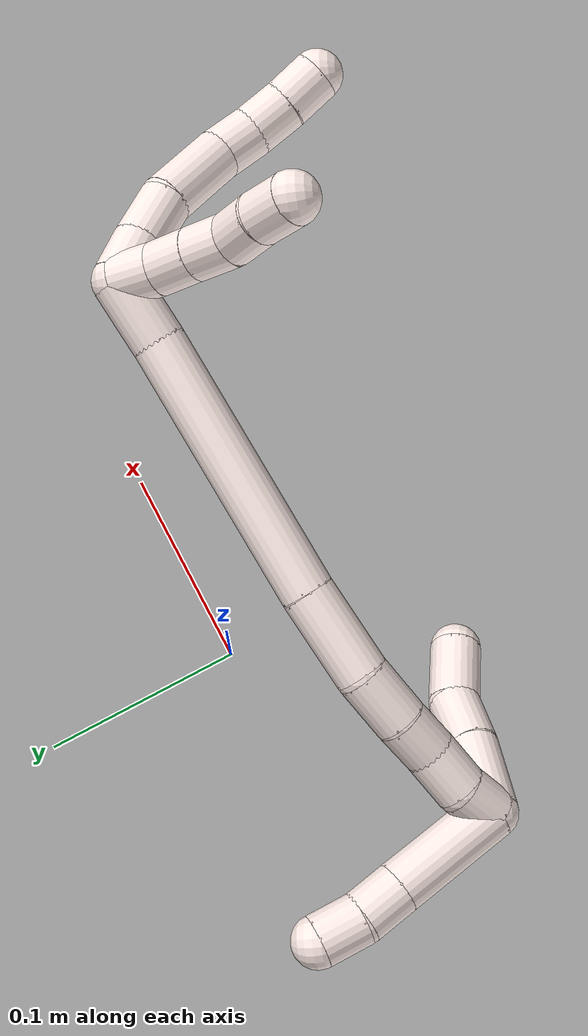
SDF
<sdf version="1.7">
 <world name="default">
  <model name="11">
   <static>0</static>
   <link name="11">
    <collision name="collision-cylinder-e_1_2_8">
     <pose>0.010193 -0.00299 0.003973 0.645212 1.11692 0.411806</pose>
     <geometry><cylinder><radius>0.0125</radius><length>0.022682</length></cylinder></geometry>
     <surface>
      <friction><ode><mu>1.16</mu><mu2>1.16</mu2><slip1>0</slip1><slip2>0</slip2></ode></friction>
      <contact><ode><kp>1e+06</kp><kd>1</kd><max_vel>0</max_vel><min_depth>0.001</min_depth></ode></contact>
     </surface>
    </collision>
    <visual name="visual-cylinder-e_1_2_8">
     <pose>0.010193 -0.00299 0.003973 0.645212 1.11692 0.411806</pose>
     <geometry><cylinder><radius>0.0125</radius><length>0.022682</length></cylinder></geometry>
     <material><ambient>1 0.933333 0.909804 1</ambient></material>
    </visual>
    <collision name="collision-cylinder-e_2_8_9">
     <pose>0.031873 -0.009024 0.013562 0.496544 1.06329 0.296004</pose>
     <geometry><cylinder><radius>0.0125</radius><length>0.026287</length></cylinder></geometry>
     <surface>
      <friction><ode><mu>1.16</mu><mu2>1.16</mu2><slip1>0</slip1><slip2>0</slip2></ode></friction>
      <contact><ode><kp>1e+06</kp><kd>1</kd><max_vel>0</max_vel><min_depth>0.001</min_depth></ode></contact>
     </surface>
    </collision>
    <visual name="visual-cylinder-e_2_8_9">
     <pose>0.031873 -0.009024 0.013562 0.496544 1.06329 0.296004</pose>
     <geometry><cylinder><radius>0.0125</radius><length>0.026287</length></cylinder></geometry>
     <material><ambient>1 0.933333 0.909804 1</ambient></material>
    </visual>
    <collision name="collision-cylinder-e_3_9_10">
     <pose>0.057785 -0.020125 0.030044 0.638112 0.817507 0.284246</pose>
     <geometry><cylinder><radius>0.0125</radius><length>0.039552</length></cylinder></geometry>
     <surface>
      <friction><ode><mu>1.16</mu><mu2>1.16</mu2><slip1>0</slip1><slip2>0</slip2></ode></friction>
      <contact><ode><kp>1e+06</kp><kd>1</kd><max_vel>0</max_vel><min_depth>0.001</min_depth></ode></contact>
     </surface>
    </collision>
    <visual name="visual-cylinder-e_3_9_10">
     <pose>0.057785 -0.020125 0.030044 0.638112 0.817507 0.284246</pose>
     <geometry><cylinder><radius>0.0125</radius><length>0.039552</length></cylinder></geometry>
     <material><ambient>1 0.933333 0.909804 1</ambient></material>
    </visual>
    <collision name="collision-cylinder-e_4_10_11">
     <pose>0.078422 -0.030679 0.048637 0.312391 0.65303 0.106555</pose>
     <geometry><cylinder><radius>0.0125</radius><length>0.020446</length></cylinder></geometry>
     <surface>
      <friction><ode><mu>1.16</mu><mu2>1.16</mu2><slip1>0</slip1><slip2>0</slip2></ode></friction>
      <contact><ode><kp>1e+06</kp><kd>1</kd><max_vel>0</max_vel><min_depth>0.001</min_depth></ode></contact>
     </surface>
    </collision>
    <visual name="visual-cylinder-e_4_10_11">
     <pose>0.078422 -0.030679 0.048637 0.312391 0.65303 0.106555</pose>
     <geometry><cylinder><radius>0.0125</radius><length>0.020446</length></cylinder></geometry>
     <material><ambient>1 0.933333 0.909804 1</ambient></material>
    </visual>
    <collision name="collision-cylinder-e_5_11_12">
     <pose>0.090489 -0.033403 0.064738 0.027272 0.609996 0.008586</pose>
     <geometry><cylinder><radius>0.0125</radius><length>0.020443</length></cylinder></geometry>
     <surface>
      <friction><ode><mu>1.16</mu><mu2>1.16</mu2><slip1>0</slip1><slip2>0</slip2></ode></friction>
      <contact><ode><kp>1e+06</kp><kd>1</kd><max_vel>0</max_vel><min_depth>0.001</min_depth></ode></contact>
     </surface>
    </collision>
    <visual name="visual-cylinder-e_5_11_12">
     <pose>0.090489 -0.033403 0.064738 0.027272 0.609996 0.008586</pose>
     <geometry><cylinder><radius>0.0125</radius><length>0.020443</length></cylinder></geometry>
     <material><ambient>1 0.933333 0.909804 1</ambient></material>
    </visual>
    <collision name="collision-cylinder-e_6_12_6">
     <pose>0.102754 -0.033523 0.081168 -0.013399 0.672036 -0.00468</pose>
     <geometry><cylinder><radius>0.0125</radius><length>0.020589</length></cylinder></geometry>
     <surface>
      <friction><ode><mu>1.16</mu><mu2>1.16</mu2><slip1>0</slip1><slip2>0</slip2></ode></friction>
      <contact><ode><kp>1e+06</kp><kd>1</kd><max_vel>0</max_vel><min_depth>0.001</min_depth></ode></contact>
     </surface>
    </collision>
    <visual name="visual-cylinder-e_6_12_6">
     <pose>0.102754 -0.033523 0.081168 -0.013399 0.672036 -0.00468</pose>
     <geometry><cylinder><radius>0.0125</radius><length>0.020589</length></cylinder></geometry>
     <material><ambient>1 0.933333 0.909804 1</ambient></material>
    </visual>
    <collision name="collision-cylinder-e_1_2_13">
     <pose>0.00037 0.002087 0.009773 -0.210428 0.037031 -0.003911</pose>
     <geometry><cylinder><radius>0.0125</radius><length>0.02</length></cylinder></geometry>
     <surface>
      <friction><ode><mu>1.16</mu><mu2>1.16</mu2><slip1>0</slip1><slip2>0</slip2></ode></friction>
      <contact><ode><kp>1e+06</kp><kd>1</kd><max_vel>0</max_vel><min_depth>0.001</min_depth></ode></contact>
     </surface>
    </collision>
    <visual name="visual-cylinder-e_1_2_13">
     <pose>0.00037 0.002087 0.009773 -0.210428 0.037031 -0.003911</pose>
     <geometry><cylinder><radius>0.0125</radius><length>0.02</length></cylinder></geometry>
     <material><ambient>1 0.933333 0.909804 1</ambient></material>
    </visual>
    <collision name="collision-cylinder-e_2_13_14">
     <pose>0.001181 0.007514 0.028961 -0.340815 0.044084 -0.007587</pose>
     <geometry><cylinder><radius>0.0125</radius><length>0.02</length></cylinder></geometry>
     <surface>
      <friction><ode><mu>1.16</mu><mu2>1.16</mu2><slip1>0</slip1><slip2>0</slip2></ode></friction>
      <contact><ode><kp>1e+06</kp><kd>1</kd><max_vel>0</max_vel><min_depth>0.001</min_depth></ode></contact>
     </surface>
    </collision>
    <visual name="visual-cylinder-e_2_13_14">
     <pose>0.001181 0.007514 0.028961 -0.340815 0.044084 -0.007587</pose>
     <geometry><cylinder><radius>0.0125</radius><length>0.02</length></cylinder></geometry>
     <material><ambient>1 0.933333 0.909804 1</ambient></material>
    </visual>
    <collision name="collision-cylinder-e_3_14_15">
     <pose>0.001983 0.0141 0.047828 -0.330897 0.03616 -0.006038</pose>
     <geometry><cylinder><radius>0.0125</radius><length>0.02</length></cylinder></geometry>
     <surface>
      <friction><ode><mu>1.16</mu><mu2>1.16</mu2><slip1>0</slip1><slip2>0</slip2></ode></friction>
      <contact><ode><kp>1e+06</kp><kd>1</kd><max_vel>0</max_vel><min_depth>0.001</min_depth></ode></contact>
     </surface>
    </collision>
    <visual name="visual-cylinder-e_3_14_15">
     <pose>0.001983 0.0141 0.047828 -0.330897 0.03616 -0.006038</pose>
     <geometry><cylinder><radius>0.0125</radius><length>0.02</length></cylinder></geometry>
     <material><ambient>1 0.933333 0.909804 1</ambient></material>
    </visual>
    <collision name="collision-cylinder-e_4_15_16">
     <pose>0.002866 0.023572 0.065088 -0.67303 0.052158 -0.018249</pose>
     <geometry><cylinder><radius>0.0125</radius><length>0.02</length></cylinder></geometry>
     <surface>
      <friction><ode><mu>1.16</mu><mu2>1.16</mu2><slip1>0</slip1><slip2>0</slip2></ode></friction>
      <contact><ode><kp>1e+06</kp><kd>1</kd><max_vel>0</max_vel><min_depth>0.001</min_depth></ode></contact>
     </surface>
    </collision>
    <visual name="visual-cylinder-e_4_15_16">
     <pose>0.002866 0.023572 0.065088 -0.67303 0.052158 -0.018249</pose>
     <geometry><cylinder><radius>0.0125</radius><length>0.02</length></cylinder></geometry>
     <material><ambient>1 0.933333 0.909804 1</ambient></material>
    </visual>
    <collision name="collision-cylinder-e_5_16_5">
     <pose>0.003793 0.035114 0.081356 -0.56116 0.040533 -0.011682</pose>
     <geometry><cylinder><radius>0.0125</radius><length>0.02</length></cylinder></geometry>
     <surface>
      <friction><ode><mu>1.16</mu><mu2>1.16</mu2><slip1>0</slip1><slip2>0</slip2></ode></friction>
      <contact><ode><kp>1e+06</kp><kd>1</kd><max_vel>0</max_vel><min_depth>0.001</min_depth></ode></contact>
     </surface>
    </collision>
    <visual name="visual-cylinder-e_5_16_5">
     <pose>0.003793 0.035114 0.081356 -0.56116 0.040533 -0.011682</pose>
     <geometry><cylinder><radius>0.0125</radius><length>0.02</length></cylinder></geometry>
     <material><ambient>1 0.933333 0.909804 1</ambient></material>
    </visual>
    <collision name="collision-cylinder-e_1_2_17">
     <pose>-0.012907 -0.007689 0.006617 0.860154 -0.904678 -0.438646</pose>
     <geometry><cylinder><radius>0.0125</radius><length>0.032832</length></cylinder></geometry>
     <surface>
      <friction><ode><mu>1.16</mu><mu2>1.16</mu2><slip1>0</slip1><slip2>0</slip2></ode></friction>
      <contact><ode><kp>1e+06</kp><kd>1</kd><max_vel>0</max_vel><min_depth>0.001</min_depth></ode></contact>
     </surface>
    </collision>
    <visual name="visual-cylinder-e_1_2_17">
     <pose>-0.012907 -0.007689 0.006617 0.860154 -0.904678 -0.438646</pose>
     <geometry><cylinder><radius>0.0125</radius><length>0.032832</length></cylinder></geometry>
     <material><ambient>1 0.933333 0.909804 1</ambient></material>
    </visual>
    <collision name="collision-cylinder-e_2_17_18">
     <pose>-0.080491 -0.039888 0.038981 0.760809 -0.994326 -0.427347</pose>
     <geometry><cylinder><radius>0.0125</radius><length>0.130434</length></cylinder></geometry>
     <surface>
      <friction><ode><mu>1.16</mu><mu2>1.16</mu2><slip1>0</slip1><slip2>0</slip2></ode></friction>
      <contact><ode><kp>1e+06</kp><kd>1</kd><max_vel>0</max_vel><min_depth>0.001</min_depth></ode></contact>
     </surface>
    </collision>
    <visual name="visual-cylinder-e_2_17_18">
     <pose>-0.080491 -0.039888 0.038981 0.760809 -0.994326 -0.427347</pose>
     <geometry><cylinder><radius>0.0125</radius><length>0.130434</length></cylinder></geometry>
     <material><ambient>1 0.933333 0.909804 1</ambient></material>
    </visual>
    <collision name="collision-cylinder-e_3_18_19">
     <pose>-0.152891 -0.073124 0.074295 0.739389 -0.939814 -0.388629</pose>
     <geometry><cylinder><radius>0.0125</radius><length>0.043898</length></cylinder></geometry>
     <surface>
      <friction><ode><mu>1.16</mu><mu2>1.16</mu2><slip1>0</slip1><slip2>0</slip2></ode></friction>
      <contact><ode><kp>1e+06</kp><kd>1</kd><max_vel>0</max_vel><min_depth>0.001</min_depth></ode></contact>
     </surface>
    </collision>
    <visual name="visual-cylinder-e_3_18_19">
     <pose>-0.152891 -0.073124 0.074295 0.739389 -0.939814 -0.388629</pose>
     <geometry><cylinder><radius>0.0125</radius><length>0.043898</length></cylinder></geometry>
     <material><ambient>1 0.933333 0.909804 1</ambient></material>
    </visual>
    <collision name="collision-cylinder-e_4_19_20">
     <pose>-0.179992 -0.089647 0.090495 0.866035 -0.741613 -0.355663</pose>
     <geometry><cylinder><radius>0.0125</radius><length>0.027767</length></cylinder></geometry>
     <surface>
      <friction><ode><mu>1.16</mu><mu2>1.16</mu2><slip1>0</slip1><slip2>0</slip2></ode></friction>
      <contact><ode><kp>1e+06</kp><kd>1</kd><max_vel>0</max_vel><min_depth>0.001</min_depth></ode></contact>
     </surface>
    </collision>
    <visual name="visual-cylinder-e_4_19_20">
     <pose>-0.179992 -0.089647 0.090495 0.866035 -0.741613 -0.355663</pose>
     <geometry><cylinder><radius>0.0125</radius><length>0.027767</length></cylinder></geometry>
     <material><ambient>1 0.933333 0.909804 1</ambient></material>
    </visual>
    <collision name="collision-cylinder-e_5_20_21">
     <pose>-0.19563 -0.104368 0.102083 0.949478 -0.634057 -0.3341</pose>
     <geometry><cylinder><radius>0.0125</radius><length>0.021134</length></cylinder></geometry>
     <surface>
      <friction><ode><mu>1.16</mu><mu2>1.16</mu2><slip1>0</slip1><slip2>0</slip2></ode></friction>
      <contact><ode><kp>1e+06</kp><kd>1</kd><max_vel>0</max_vel><min_depth>0.001</min_depth></ode></contact>
     </surface>
    </collision>
    <visual name="visual-cylinder-e_5_20_21">
     <pose>-0.19563 -0.104368 0.102083 0.949478 -0.634057 -0.3341</pose>
     <geometry><cylinder><radius>0.0125</radius><length>0.021134</length></cylinder></geometry>
     <material><ambient>1 0.933333 0.909804 1</ambient></material>
    </visual>
    <collision name="collision-cylinder-e_6_21_22">
     <pose>-0.209804 -0.1176 0.112662 0.842809 -0.752535 -0.350571</pose>
     <geometry><cylinder><radius>0.0125</radius><length>0.023156</length></cylinder></geometry>
     <surface>
      <friction><ode><mu>1.16</mu><mu2>1.16</mu2><slip1>0</slip1><slip2>0</slip2></ode></friction>
      <contact><ode><kp>1e+06</kp><kd>1</kd><max_vel>0</max_vel><min_depth>0.001</min_depth></ode></contact>
     </surface>
    </collision>
    <visual name="visual-cylinder-e_6_21_22">
     <pose>-0.209804 -0.1176 0.112662 0.842809 -0.752535 -0.350571</pose>
     <geometry><cylinder><radius>0.0125</radius><length>0.023156</length></cylinder></geometry>
     <material><ambient>1 0.933333 0.909804 1</ambient></material>
    </visual>
    <collision name="collision-cylinder-e_7_22_1">
     <pose>-0.222608 -0.131024 0.124064 0.888675 -0.49012 -0.237011</pose>
     <geometry><cylinder><radius>0.0125</radius><length>0.020778</length></cylinder></geometry>
     <surface>
      <friction><ode><mu>1.16</mu><mu2>1.16</mu2><slip1>0</slip1><slip2>0</slip2></ode></friction>
      <contact><ode><kp>1e+06</kp><kd>1</kd><max_vel>0</max_vel><min_depth>0.001</min_depth></ode></contact>
     </surface>
    </collision>
    <visual name="visual-cylinder-e_7_22_1">
     <pose>-0.222608 -0.131024 0.124064 0.888675 -0.49012 -0.237011</pose>
     <geometry><cylinder><radius>0.0125</radius><length>0.020778</length></cylinder></geometry>
     <material><ambient>1 0.933333 0.909804 1</ambient></material>
    </visual>
    <collision name="collision-cylinder-e_1_1_23">
     <pose>-0.243827 -0.131004 0.108078 -2.8248 -0.619355 2.21555</pose>
     <geometry><cylinder><radius>0.0125</radius><length>0.056256</length></cylinder></geometry>
     <surface>
      <friction><ode><mu>1.16</mu><mu2>1.16</mu2><slip1>0</slip1><slip2>0</slip2></ode></friction>
      <contact><ode><kp>1e+06</kp><kd>1</kd><max_vel>0</max_vel><min_depth>0.001</min_depth></ode></contact>
     </surface>
    </collision>
    <visual name="visual-cylinder-e_1_1_23">
     <pose>-0.243827 -0.131004 0.108078 -2.8248 -0.619355 2.21555</pose>
     <geometry><cylinder><radius>0.0125</radius><length>0.056256</length></cylinder></geometry>
     <material><ambient>1 0.933333 0.909804 1</ambient></material>
    </visual>
    <collision name="collision-cylinder-e_2_23_24">
     <pose>-0.266538 -0.12099 0.077988 -2.80876 -0.626929 2.18541</pose>
     <geometry><cylinder><radius>0.0125</radius><length>0.021757</length></cylinder></geometry>
     <surface>
      <friction><ode><mu>1.16</mu><mu2>1.16</mu2><slip1>0</slip1><slip2>0</slip2></ode></friction>
      <contact><ode><kp>1e+06</kp><kd>1</kd><max_vel>0</max_vel><min_depth>0.001</min_depth></ode></contact>
     </surface>
    </collision>
    <visual name="visual-cylinder-e_2_23_24">
     <pose>-0.266538 -0.12099 0.077988 -2.80876 -0.626929 2.18541</pose>
     <geometry><cylinder><radius>0.0125</radius><length>0.021757</length></cylinder></geometry>
     <material><ambient>1 0.933333 0.909804 1</ambient></material>
    </visual>
    <collision name="collision-cylinder-e_3_24_4">
     <pose>-0.277607 -0.115382 0.0601 -2.86348 -0.440507 2.02419</pose>
     <geometry><cylinder><radius>0.0125</radius><length>0.021987</length></cylinder></geometry>
     <surface>
      <friction><ode><mu>1.16</mu><mu2>1.16</mu2><slip1>0</slip1><slip2>0</slip2></ode></friction>
      <contact><ode><kp>1e+06</kp><kd>1</kd><max_vel>0</max_vel><min_depth>0.001</min_depth></ode></contact>
     </surface>
    </collision>
    <visual name="visual-cylinder-e_3_24_4">
     <pose>-0.277607 -0.115382 0.0601 -2.86348 -0.440507 2.02419</pose>
     <geometry><cylinder><radius>0.0125</radius><length>0.021987</length></cylinder></geometry>
     <material><ambient>1 0.933333 0.909804 1</ambient></material>
    </visual>
    <collision name="collision-cylinder-e_1_1_25">
     <pose>-0.210417 -0.145788 0.125716 2.06546 1.10009 1.59785</pose>
     <geometry><cylinder><radius>0.0125</radius><length>0.03833</length></cylinder></geometry>
     <surface>
      <friction><ode><mu>1.16</mu><mu2>1.16</mu2><slip1>0</slip1><slip2>0</slip2></ode></friction>
      <contact><ode><kp>1e+06</kp><kd>1</kd><max_vel>0</max_vel><min_depth>0.001</min_depth></ode></contact>
     </surface>
    </collision>
    <visual name="visual-cylinder-e_1_1_25">
     <pose>-0.210417 -0.145788 0.125716 2.06546 1.10009 1.59785</pose>
     <geometry><cylinder><radius>0.0125</radius><length>0.03833</length></cylinder></geometry>
     <material><ambient>1 0.933333 0.909804 1</ambient></material>
    </visual>
    <collision name="collision-cylinder-e_2_25_26">
     <pose>-0.181088 -0.159491 0.117264 2.19132 1.02494 1.66017</pose>
     <geometry><cylinder><radius>0.0125</radius><length>0.028663</length></cylinder></geometry>
     <surface>
      <friction><ode><mu>1.16</mu><mu2>1.16</mu2><slip1>0</slip1><slip2>0</slip2></ode></friction>
      <contact><ode><kp>1e+06</kp><kd>1</kd><max_vel>0</max_vel><min_depth>0.001</min_depth></ode></contact>
     </surface>
    </collision>
    <visual name="visual-cylinder-e_2_25_26">
     <pose>-0.181088 -0.159491 0.117264 2.19132 1.02494 1.66017</pose>
     <geometry><cylinder><radius>0.0125</radius><length>0.028663</length></cylinder></geometry>
     <material><ambient>1 0.933333 0.909804 1</ambient></material>
    </visual>
    <collision name="collision-cylinder-e_3_26_3">
     <pose>-0.153704 -0.172103 0.113461 1.4911 1.16068 1.08873</pose>
     <geometry><cylinder><radius>0.0125</radius><length>0.033007</length></cylinder></geometry>
     <surface>
      <friction><ode><mu>1.16</mu><mu2>1.16</mu2><slip1>0</slip1><slip2>0</slip2></ode></friction>
      <contact><ode><kp>1e+06</kp><kd>1</kd><max_vel>0</max_vel><min_depth>0.001</min_depth></ode></contact>
     </surface>
    </collision>
    <visual name="visual-cylinder-e_3_26_3">
     <pose>-0.153704 -0.172103 0.113461 1.4911 1.16068 1.08873</pose>
     <geometry><cylinder><radius>0.0125</radius><length>0.033007</length></cylinder></geometry>
     <material><ambient>1 0.933333 0.909804 1</ambient></material>
    </visual>
    <collision name="collision-sphere-3">
     <pose>-0.138569 -0.178663 0.113985 0 -0 0</pose>
     <geometry><sphere><radius>0.0125</radius></sphere></geometry>
     <surface>
      <friction><ode><mu>1.16</mu><mu2>1.16</mu2><slip1>0</slip1><slip2>0</slip2></ode></friction>
      <contact><ode><kp>1e+06</kp><kd>1</kd><max_vel>0</max_vel><min_depth>0.001</min_depth></ode></contact>
     </surface>
    </collision>
    <visual name="visual-sphere-3">
     <pose>-0.138569 -0.178663 0.113985 0 -0 0</pose>
     <geometry><sphere><radius>0.0125</radius></sphere></geometry>
     <material><ambient>1 0.933333 0.909804 1</ambient></material>
    </visual>
    <collision name="collision-sphere-26">
     <pose>-0.168839 -0.165544 0.112938 0 -0 0</pose>
     <geometry><sphere><radius>0.0125</radius></sphere></geometry>
     <surface>
      <friction><ode><mu>1.16</mu><mu2>1.16</mu2><slip1>0</slip1><slip2>0</slip2></ode></friction>
      <contact><ode><kp>1e+06</kp><kd>1</kd><max_vel>0</max_vel><min_depth>0.001</min_depth></ode></contact>
     </surface>
    </collision>
    <visual name="visual-sphere-26">
     <pose>-0.168839 -0.165544 0.112938 0 -0 0</pose>
     <geometry><sphere><radius>0.0125</radius></sphere></geometry>
     <material><ambient>1 0.933333 0.909804 1</ambient></material>
    </visual>
    <collision name="collision-sphere-25">
     <pose>-0.193337 -0.153438 0.12159 0 -0 0</pose>
     <geometry><sphere><radius>0.0125</radius></sphere></geometry>
     <surface>
      <friction><ode><mu>1.16</mu><mu2>1.16</mu2><slip1>0</slip1><slip2>0</slip2></ode></friction>
      <contact><ode><kp>1e+06</kp><kd>1</kd><max_vel>0</max_vel><min_depth>0.001</min_depth></ode></contact>
     </surface>
    </collision>
    <visual name="visual-sphere-25">
     <pose>-0.193337 -0.153438 0.12159 0 -0 0</pose>
     <geometry><sphere><radius>0.0125</radius></sphere></geometry>
     <material><ambient>1 0.933333 0.909804 1</ambient></material>
    </visual>
    <collision name="collision-sphere-4">
     <pose>-0.282295 -0.112652 0.050539 0 -0 0</pose>
     <geometry><sphere><radius>0.0125</radius></sphere></geometry>
     <surface>
      <friction><ode><mu>1.16</mu><mu2>1.16</mu2><slip1>0</slip1><slip2>0</slip2></ode></friction>
      <contact><ode><kp>1e+06</kp><kd>1</kd><max_vel>0</max_vel><min_depth>0.001</min_depth></ode></contact>
     </surface>
    </collision>
    <visual name="visual-sphere-4">
     <pose>-0.282295 -0.112652 0.050539 0 -0 0</pose>
     <geometry><sphere><radius>0.0125</radius></sphere></geometry>
     <material><ambient>1 0.933333 0.909804 1</ambient></material>
    </visual>
    <collision name="collision-sphere-24">
     <pose>-0.27292 -0.118112 0.069662 0 -0 0</pose>
     <geometry><sphere><radius>0.0125</radius></sphere></geometry>
     <surface>
      <friction><ode><mu>1.16</mu><mu2>1.16</mu2><slip1>0</slip1><slip2>0</slip2></ode></friction>
      <contact><ode><kp>1e+06</kp><kd>1</kd><max_vel>0</max_vel><min_depth>0.001</min_depth></ode></contact>
     </surface>
    </collision>
    <visual name="visual-sphere-24">
     <pose>-0.27292 -0.118112 0.069662 0 -0 0</pose>
     <geometry><sphere><radius>0.0125</radius></sphere></geometry>
     <material><ambient>1 0.933333 0.909804 1</ambient></material>
    </visual>
    <collision name="collision-sphere-23">
     <pose>-0.260156 -0.123869 0.086315 0 -0 0</pose>
     <geometry><sphere><radius>0.0125</radius></sphere></geometry>
     <surface>
      <friction><ode><mu>1.16</mu><mu2>1.16</mu2><slip1>0</slip1><slip2>0</slip2></ode></friction>
      <contact><ode><kp>1e+06</kp><kd>1</kd><max_vel>0</max_vel><min_depth>0.001</min_depth></ode></contact>
     </surface>
    </collision>
    <visual name="visual-sphere-23">
     <pose>-0.260156 -0.123869 0.086315 0 -0 0</pose>
     <geometry><sphere><radius>0.0125</radius></sphere></geometry>
     <material><ambient>1 0.933333 0.909804 1</ambient></material>
    </visual>
    <collision name="collision-sphere-1">
     <pose>-0.227498 -0.138139 0.129842 0 -0 0</pose>
     <geometry><sphere><radius>0.0125</radius></sphere></geometry>
     <surface>
      <friction><ode><mu>1.16</mu><mu2>1.16</mu2><slip1>0</slip1><slip2>0</slip2></ode></friction>
      <contact><ode><kp>1e+06</kp><kd>1</kd><max_vel>0</max_vel><min_depth>0.001</min_depth></ode></contact>
     </surface>
    </collision>
    <visual name="visual-sphere-1">
     <pose>-0.227498 -0.138139 0.129842 0 -0 0</pose>
     <geometry><sphere><radius>0.0125</radius></sphere></geometry>
     <material><ambient>1 0.933333 0.909804 1</ambient></material>
    </visual>
    <collision name="collision-sphere-22">
     <pose>-0.217717 -0.123909 0.118285 0 -0 0</pose>
     <geometry><sphere><radius>0.0125</radius></sphere></geometry>
     <surface>
      <friction><ode><mu>1.16</mu><mu2>1.16</mu2><slip1>0</slip1><slip2>0</slip2></ode></friction>
      <contact><ode><kp>1e+06</kp><kd>1</kd><max_vel>0</max_vel><min_depth>0.001</min_depth></ode></contact>
     </surface>
    </collision>
    <visual name="visual-sphere-22">
     <pose>-0.217717 -0.123909 0.118285 0 -0 0</pose>
     <geometry><sphere><radius>0.0125</radius></sphere></geometry>
     <material><ambient>1 0.933333 0.909804 1</ambient></material>
    </visual>
    <collision name="collision-sphere-21">
     <pose>-0.20189 -0.11129 0.107038 0 -0 0</pose>
     <geometry><sphere><radius>0.0125</radius></sphere></geometry>
     <surface>
      <friction><ode><mu>1.16</mu><mu2>1.16</mu2><slip1>0</slip1><slip2>0</slip2></ode></friction>
      <contact><ode><kp>1e+06</kp><kd>1</kd><max_vel>0</max_vel><min_depth>0.001</min_depth></ode></contact>
     </surface>
    </collision>
    <visual name="visual-sphere-21">
     <pose>-0.20189 -0.11129 0.107038 0 -0 0</pose>
     <geometry><sphere><radius>0.0125</radius></sphere></geometry>
     <material><ambient>1 0.933333 0.909804 1</ambient></material>
    </visual>
    <collision name="collision-sphere-12">
     <pose>0.096345 -0.033631 0.073113 0 -0 0</pose>
     <geometry><sphere><radius>0.0125</radius></sphere></geometry>
     <surface>
      <friction><ode><mu>1.16</mu><mu2>1.16</mu2><slip1>0</slip1><slip2>0</slip2></ode></friction>
      <contact><ode><kp>1e+06</kp><kd>1</kd><max_vel>0</max_vel><min_depth>0.001</min_depth></ode></contact>
     </surface>
    </collision>
    <visual name="visual-sphere-12">
     <pose>0.096345 -0.033631 0.073113 0 -0 0</pose>
     <geometry><sphere><radius>0.0125</radius></sphere></geometry>
     <material><ambient>1 0.933333 0.909804 1</ambient></material>
    </visual>
    <collision name="collision-sphere-11">
     <pose>0.084634 -0.033174 0.056363 0 -0 0</pose>
     <geometry><sphere><radius>0.0125</radius></sphere></geometry>
     <surface>
      <friction><ode><mu>1.16</mu><mu2>1.16</mu2><slip1>0</slip1><slip2>0</slip2></ode></friction>
      <contact><ode><kp>1e+06</kp><kd>1</kd><max_vel>0</max_vel><min_depth>0.001</min_depth></ode></contact>
     </surface>
    </collision>
    <visual name="visual-sphere-11">
     <pose>0.084634 -0.033174 0.056363 0 -0 0</pose>
     <geometry><sphere><radius>0.0125</radius></sphere></geometry>
     <material><ambient>1 0.933333 0.909804 1</ambient></material>
    </visual>
    <collision name="collision-sphere-10">
     <pose>0.072211 -0.028183 0.04091 0 -0 0</pose>
     <geometry><sphere><radius>0.0125</radius></sphere></geometry>
     <surface>
      <friction><ode><mu>1.16</mu><mu2>1.16</mu2><slip1>0</slip1><slip2>0</slip2></ode></friction>
      <contact><ode><kp>1e+06</kp><kd>1</kd><max_vel>0</max_vel><min_depth>0.001</min_depth></ode></contact>
     </surface>
    </collision>
    <visual name="visual-sphere-10">
     <pose>0.072211 -0.028183 0.04091 0 -0 0</pose>
     <geometry><sphere><radius>0.0125</radius></sphere></geometry>
     <material><ambient>1 0.933333 0.909804 1</ambient></material>
    </visual>
    <collision name="collision-sphere-9">
     <pose>0.04336 -0.012067 0.019178 0 -0 0</pose>
     <geometry><sphere><radius>0.0125</radius></sphere></geometry>
     <surface>
      <friction><ode><mu>1.16</mu><mu2>1.16</mu2><slip1>0</slip1><slip2>0</slip2></ode></friction>
      <contact><ode><kp>1e+06</kp><kd>1</kd><max_vel>0</max_vel><min_depth>0.001</min_depth></ode></contact>
     </surface>
    </collision>
    <visual name="visual-sphere-9">
     <pose>0.04336 -0.012067 0.019178 0 -0 0</pose>
     <geometry><sphere><radius>0.0125</radius></sphere></geometry>
     <material><ambient>1 0.933333 0.909804 1</ambient></material>
    </visual>
    <collision name="collision-sphere-2">
     <geometry><sphere><radius>0.0125</radius></sphere></geometry>
     <surface>
      <friction><ode><mu>1.16</mu><mu2>1.16</mu2><slip1>0</slip1><slip2>0</slip2></ode></friction>
      <contact><ode><kp>1e+06</kp><kd>1</kd><max_vel>0</max_vel><min_depth>0.001</min_depth></ode></contact>
     </surface>
    </collision>
    <visual name="visual-sphere-2">
     <geometry><sphere><radius>0.0125</radius></sphere></geometry>
     <material><ambient>1 0.933333 0.909804 1</ambient></material>
    </visual>
    <collision name="collision-sphere-19">
     <pose>-0.170614 -0.081849 0.083862 0 -0 0</pose>
     <geometry><sphere><radius>0.0125</radius></sphere></geometry>
     <surface>
      <friction><ode><mu>1.16</mu><mu2>1.16</mu2><slip1>0</slip1><slip2>0</slip2></ode></friction>
      <contact><ode><kp>1e+06</kp><kd>1</kd><max_vel>0</max_vel><min_depth>0.001</min_depth></ode></contact>
     </surface>
    </collision>
    <visual name="visual-sphere-19">
     <pose>-0.170614 -0.081849 0.083862 0 -0 0</pose>
     <geometry><sphere><radius>0.0125</radius></sphere></geometry>
     <material><ambient>1 0.933333 0.909804 1</ambient></material>
    </visual>
    <collision name="collision-sphere-8">
     <pose>0.020386 -0.005981 0.007946 0 -0 0</pose>
     <geometry><sphere><radius>0.0125</radius></sphere></geometry>
     <surface>
      <friction><ode><mu>1.16</mu><mu2>1.16</mu2><slip1>0</slip1><slip2>0</slip2></ode></friction>
      <contact><ode><kp>1e+06</kp><kd>1</kd><max_vel>0</max_vel><min_depth>0.001</min_depth></ode></contact>
     </surface>
    </collision>
    <visual name="visual-sphere-8">
     <pose>0.020386 -0.005981 0.007946 0 -0 0</pose>
     <geometry><sphere><radius>0.0125</radius></sphere></geometry>
     <material><ambient>1 0.933333 0.909804 1</ambient></material>
    </visual>
    <collision name="collision-sphere-6">
     <pose>0.109163 -0.033415 0.089224 0 -0 0</pose>
     <geometry><sphere><radius>0.0125</radius></sphere></geometry>
     <surface>
      <friction><ode><mu>1.16</mu><mu2>1.16</mu2><slip1>0</slip1><slip2>0</slip2></ode></friction>
      <contact><ode><kp>1e+06</kp><kd>1</kd><max_vel>0</max_vel><min_depth>0.001</min_depth></ode></contact>
     </surface>
    </collision>
    <visual name="visual-sphere-6">
     <pose>0.109163 -0.033415 0.089224 0 -0 0</pose>
     <geometry><sphere><radius>0.0125</radius></sphere></geometry>
     <material><ambient>1 0.933333 0.909804 1</ambient></material>
    </visual>
    <collision name="collision-sphere-13">
     <pose>0.00074 0.004175 0.019545 0 -0 0</pose>
     <geometry><sphere><radius>0.0125</radius></sphere></geometry>
     <surface>
      <friction><ode><mu>1.16</mu><mu2>1.16</mu2><slip1>0</slip1><slip2>0</slip2></ode></friction>
      <contact><ode><kp>1e+06</kp><kd>1</kd><max_vel>0</max_vel><min_depth>0.001</min_depth></ode></contact>
     </surface>
    </collision>
    <visual name="visual-sphere-13">
     <pose>0.00074 0.004175 0.019545 0 -0 0</pose>
     <geometry><sphere><radius>0.0125</radius></sphere></geometry>
     <material><ambient>1 0.933333 0.909804 1</ambient></material>
    </visual>
    <collision name="collision-sphere-14">
     <pose>0.001622 0.010853 0.038377 0 -0 0</pose>
     <geometry><sphere><radius>0.0125</radius></sphere></geometry>
     <surface>
      <friction><ode><mu>1.16</mu><mu2>1.16</mu2><slip1>0</slip1><slip2>0</slip2></ode></friction>
      <contact><ode><kp>1e+06</kp><kd>1</kd><max_vel>0</max_vel><min_depth>0.001</min_depth></ode></contact>
     </surface>
    </collision>
    <visual name="visual-sphere-14">
     <pose>0.001622 0.010853 0.038377 0 -0 0</pose>
     <geometry><sphere><radius>0.0125</radius></sphere></geometry>
     <material><ambient>1 0.933333 0.909804 1</ambient></material>
    </visual>
    <collision name="collision-sphere-15">
     <pose>0.002345 0.017347 0.057279 0 -0 0</pose>
     <geometry><sphere><radius>0.0125</radius></sphere></geometry>
     <surface>
      <friction><ode><mu>1.16</mu><mu2>1.16</mu2><slip1>0</slip1><slip2>0</slip2></ode></friction>
      <contact><ode><kp>1e+06</kp><kd>1</kd><max_vel>0</max_vel><min_depth>0.001</min_depth></ode></contact>
     </surface>
    </collision>
    <visual name="visual-sphere-15">
     <pose>0.002345 0.017347 0.057279 0 -0 0</pose>
     <geometry><sphere><radius>0.0125</radius></sphere></geometry>
     <material><ambient>1 0.933333 0.909804 1</ambient></material>
    </visual>
    <collision name="collision-sphere-16">
     <pose>0.003388 0.029797 0.072897 0 -0 0</pose>
     <geometry><sphere><radius>0.0125</radius></sphere></geometry>
     <surface>
      <friction><ode><mu>1.16</mu><mu2>1.16</mu2><slip1>0</slip1><slip2>0</slip2></ode></friction>
      <contact><ode><kp>1e+06</kp><kd>1</kd><max_vel>0</max_vel><min_depth>0.001</min_depth></ode></contact>
     </surface>
    </collision>
    <visual name="visual-sphere-16">
     <pose>0.003388 0.029797 0.072897 0 -0 0</pose>
     <geometry><sphere><radius>0.0125</radius></sphere></geometry>
     <material><ambient>1 0.933333 0.909804 1</ambient></material>
    </visual>
    <collision name="collision-sphere-5">
     <pose>0.004198 0.040432 0.089816 0 -0 0</pose>
     <geometry><sphere><radius>0.0125</radius></sphere></geometry>
     <surface>
      <friction><ode><mu>1.16</mu><mu2>1.16</mu2><slip1>0</slip1><slip2>0</slip2></ode></friction>
      <contact><ode><kp>1e+06</kp><kd>1</kd><max_vel>0</max_vel><min_depth>0.001</min_depth></ode></contact>
     </surface>
    </collision>
    <visual name="visual-sphere-5">
     <pose>0.004198 0.040432 0.089816 0 -0 0</pose>
     <geometry><sphere><radius>0.0125</radius></sphere></geometry>
     <material><ambient>1 0.933333 0.909804 1</ambient></material>
    </visual>
    <collision name="collision-sphere-17">
     <pose>-0.025814 -0.015377 0.013235 0 -0 0</pose>
     <geometry><sphere><radius>0.0125</radius></sphere></geometry>
     <surface>
      <friction><ode><mu>1.16</mu><mu2>1.16</mu2><slip1>0</slip1><slip2>0</slip2></ode></friction>
      <contact><ode><kp>1e+06</kp><kd>1</kd><max_vel>0</max_vel><min_depth>0.001</min_depth></ode></contact>
     </surface>
    </collision>
    <visual name="visual-sphere-17">
     <pose>-0.025814 -0.015377 0.013235 0 -0 0</pose>
     <geometry><sphere><radius>0.0125</radius></sphere></geometry>
     <material><ambient>1 0.933333 0.909804 1</ambient></material>
    </visual>
    <collision name="collision-sphere-18">
     <pose>-0.135169 -0.064398 0.064728 0 -0 0</pose>
     <geometry><sphere><radius>0.0125</radius></sphere></geometry>
     <surface>
      <friction><ode><mu>1.16</mu><mu2>1.16</mu2><slip1>0</slip1><slip2>0</slip2></ode></friction>
      <contact><ode><kp>1e+06</kp><kd>1</kd><max_vel>0</max_vel><min_depth>0.001</min_depth></ode></contact>
     </surface>
    </collision>
    <visual name="visual-sphere-18">
     <pose>-0.135169 -0.064398 0.064728 0 -0 0</pose>
     <geometry><sphere><radius>0.0125</radius></sphere></geometry>
     <material><ambient>1 0.933333 0.909804 1</ambient></material>
    </visual>
    <collision name="collision-sphere-20">
     <pose>-0.18937 -0.097446 0.097127 0 -0 0</pose>
     <geometry><sphere><radius>0.0125</radius></sphere></geometry>
     <surface>
      <friction><ode><mu>1.16</mu><mu2>1.16</mu2><slip1>0</slip1><slip2>0</slip2></ode></friction>
      <contact><ode><kp>1e+06</kp><kd>1</kd><max_vel>0</max_vel><min_depth>0.001</min_depth></ode></contact>
     </surface>
    </collision>
    <visual name="visual-sphere-20">
     <pose>-0.18937 -0.097446 0.097127 0 -0 0</pose>
     <geometry><sphere><radius>0.0125</radius></sphere></geometry>
     <material><ambient>1 0.933333 0.909804 1</ambient></material>
    </visual>
    <inertial>
     <pose>-0.094762 -0.064851 0.066303 0 -0 0</pose>
     <mass>0.75</mass>
     <inertia>
      <ixx>8.3e-05</ixx>
      <ixy>0</ixy>
      <ixz>0</ixz>
      <iyy>0.000197</iyy>
      <iyz>0</iyz>
      <izz>0.000262</izz>
     </inertia>
    </inertial>
   </link>
   <pose>0.157587 -0.028574 0.136469 1.32878 0.142483 -0.439668</pose>
  </model>
 </world>
</sdf>
